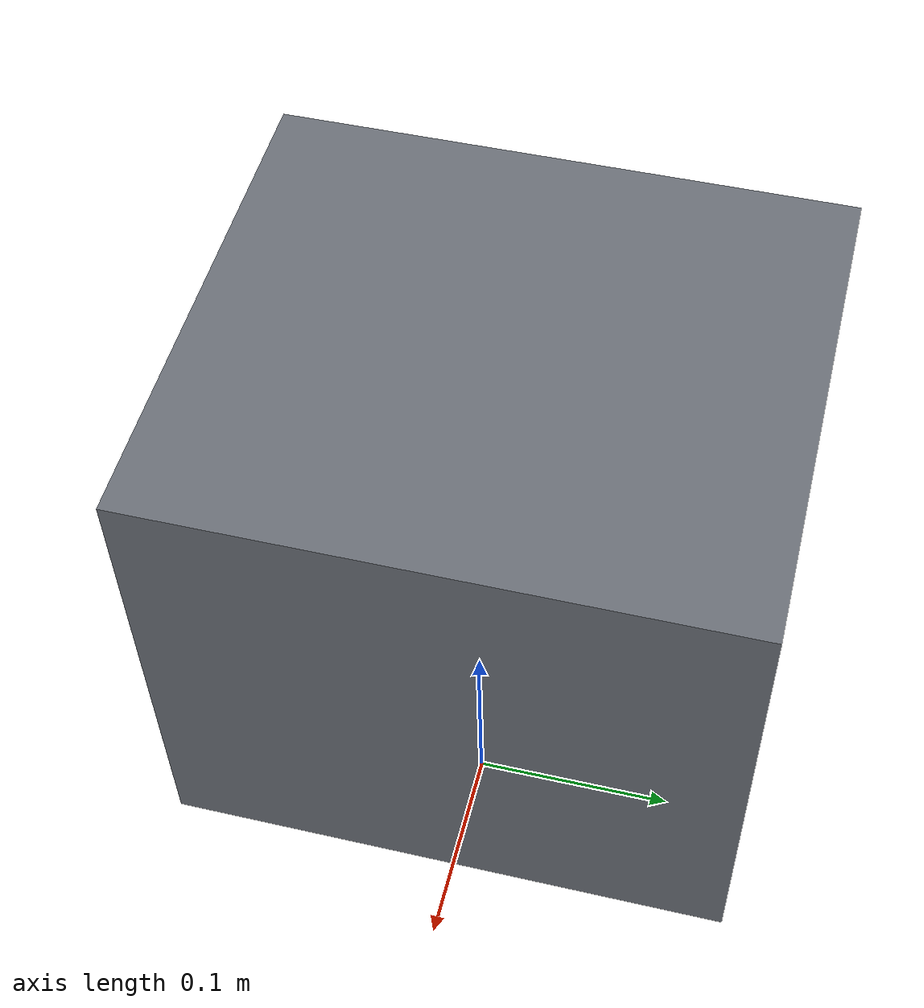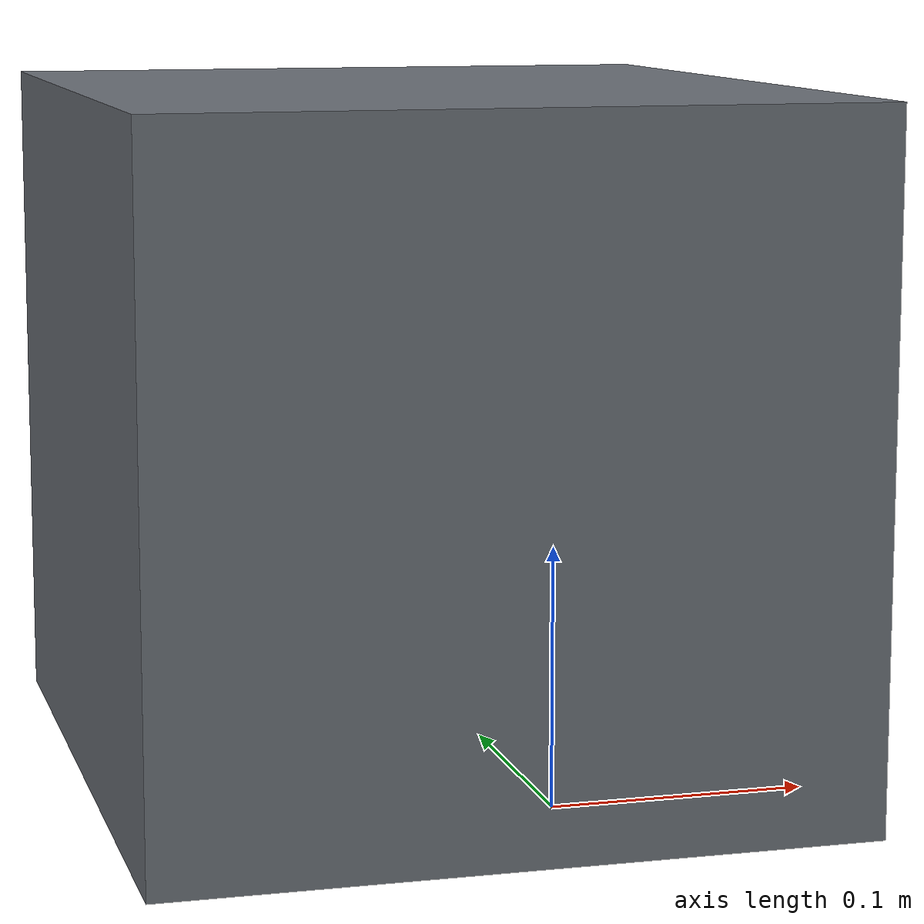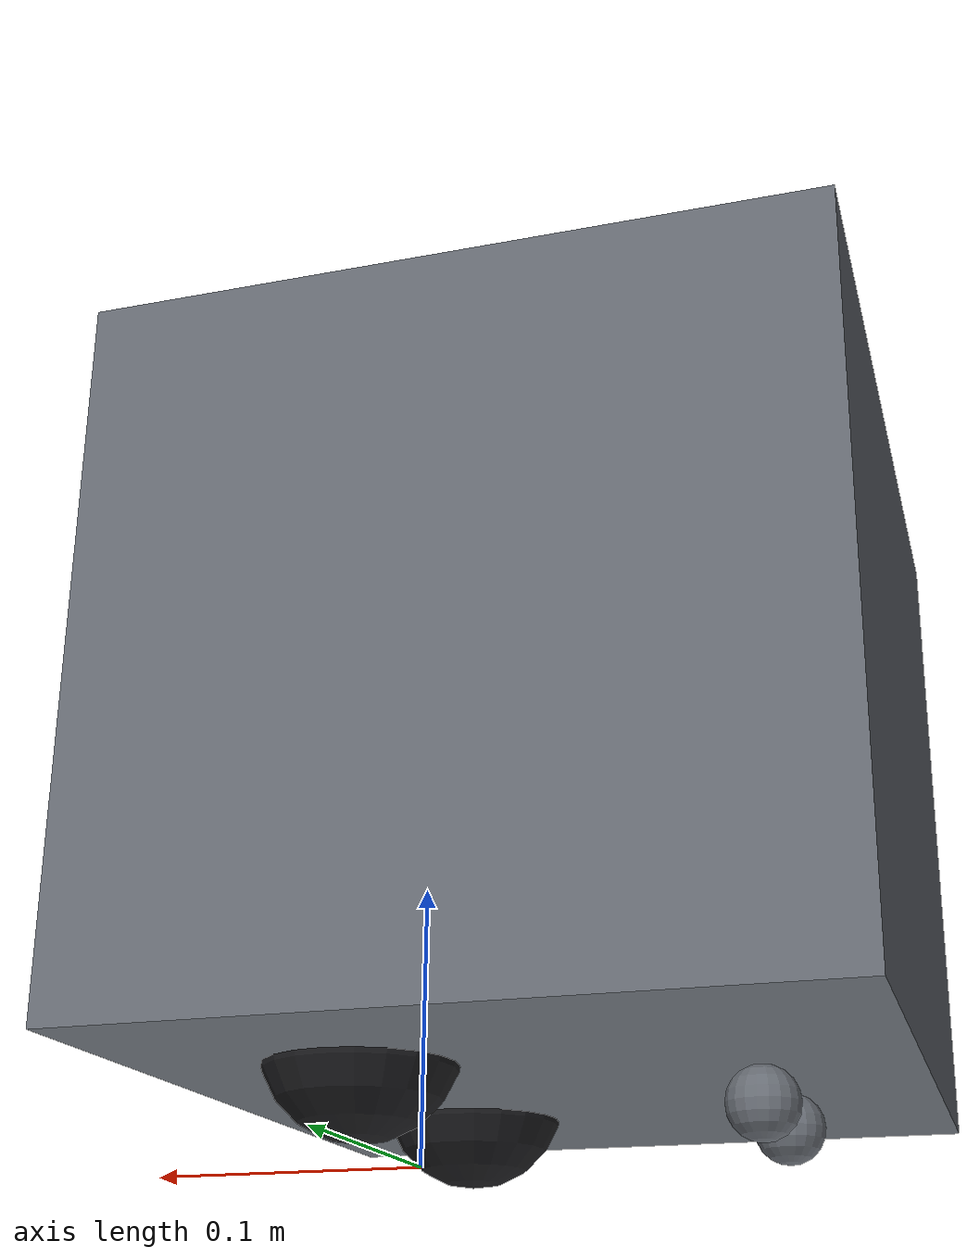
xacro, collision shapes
<?xml version="1.0"?>
<robot xmlns:xacro="http://ros.org/wiki/xacro" name="jongky">

  <!-- 이 파일이 launch에서 호출되는 입구.
       실제 로봇 정의는 jongky.urdf.xacro 안에 있고,
       여기서는 실행 시 바꿀 수 있는 인자의 기본값만 정한다.

       예: ros2 launch ... cam_tilt_deg:=12
       하면 파일을 안 고치고도 카메라 각도가 바뀐다. -->

  <xacro:include filename="$(find jongky_description)/urdf/jongky.urdf.xacro"/>

  <xacro:arg name="namespace"     default=""/>
  <xacro:arg name="is_sim"        default="false"/>
  <!-- 목업 하드웨어. 실물 없이 /cmd_vel -> /odom -> TF 를 돌려볼 때 true -->
  <xacro:arg name="use_mock"      default="false"/>
  <!-- 실물 모드에서 쓸 시리얼 포트. 가상 포트로 시험할 때 바꿔 넣는다 -->
  <xacro:arg name="serial_port"   default="/dev/yahboom"/>
  <xacro:arg name="cam_tilt_deg"  default="0"/>

  <xacro:arg name="laser_yaw_deg" default="0"/>

  <xacro:arg name="tof_pitch_deg" default="25"/>
  <xacro:arg name="tof_yaw_deg"   default="5"/>

  <xacro:insert_robot namespace="$(arg namespace)"
                      is_sim="$(arg is_sim)"
                      use_mock="$(arg use_mock)"
                      serial_port="$(arg serial_port)"
                      cam_tilt_deg="$(arg cam_tilt_deg)"
                      laser_yaw_deg="$(arg laser_yaw_deg)"
                      tof_pitch_deg="$(arg tof_pitch_deg)"
                      tof_yaw_deg="$(arg tof_yaw_deg)"/>
</robot>

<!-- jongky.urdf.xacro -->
<robot xmlns:xacro="http://www.ros.org/wiki/xacro">

  <xacro:macro name="insert_robot" params="namespace is_sim:=false use_mock:=false serial_port cam_tilt_deg laser_yaw_deg tof_pitch_deg tof_yaw_deg">

    <xacro:include filename="$(find jongky_description)/urdf/common/insert_inertia.urdf.xacro"/>

    <!-- ============================================================
         치수 상수 — 값을 바꿀 일이 있으면 여기만 고치면 된다
         ============================================================ -->

    <!-- 구동 바퀴 (실측 확정) -->
    <xacro:property name="wheel_radius"  value="0.0335"/>
    <!-- 실측 24~25. wheel.stl은 접지면까지 26.97이라 실물과 다르다.
         비주얼만 2.5mm 두껍게 보이고 물리·좌표에는 영향 없다. -->
    <xacro:property name="wheel_width"   value="0.0245"/>

    <xacro:property name="wheel_y"       value="0.059545"/>
    <!-- 메시 두께 중심이 0.6mm 치우쳐 있어 보정 -->
    <xacro:property name="wheel_mesh_dy" value="0.0006"/>

    <!-- 캐스터 (실측 확정, 뒤쪽 2개) -->
    <xacro:property name="caster_radius" value="0.0125"/>
    <xacro:property name="caster_x"      value="-0.12523"/>
    <xacro:property name="caster_y"      value="0.028"/>
    <xacro:property name="caster_z"      value="${caster_radius - wheel_radius}"/>

    <xacro:property name="caster_trail"     value="${caster_radius}"/>

    <xacro:property name="caster_ball_mass" value="0.010"/>
    <xacro:property name="caster_yoke_mass" value="0.010"/>

    <!-- 메시 실측 bbox (base_link.stl, mm→m 환산)
         관성 계산은 이 실제 치수로 한다. -->
    <xacro:property name="body_len"      value="0.24952"/>
    <!-- 판 폭 148 = 공식 도면값. 메시도 148.0~148.3으로 일치한다.
         판은 네 모서리가 모따기되어 앞뒤 끝에서 139.7까지 좁아지므로,
         모서리 근처에서 재면 135쯤 나온다. 가운데를 재야 한다. -->
    <xacro:property name="body_wid_real" value="0.148"/>
    <xacro:property name="body_hgt_real" value="0.27180"/>
    <xacro:property name="body_cx"       value="-0.05139"/>
    <xacro:property name="body_com_z"    value="0.10155"/>
    <xacro:property name="body_top_z"    value="0.23745"/>

    <xacro:property name="body_wid"      value="0.28011"/>
    <xacro:property name="body_bot_z"    value="${caster_z + caster_radius}"/>
    <xacro:property name="body_hgt"      value="${body_top_z - body_bot_z}"/>
    <xacro:property name="body_cz"       value="${(body_top_z + body_bot_z)/2}"/>

    <!-- 센서 위치 (TBD — 전부 추정값, 실측 후 교체할 것) -->
    <xacro:property name="laser_x"       value="0.01174"/>
    <xacro:property name="laser_z"       value="0.21925"/>
    <xacro:property name="cam_x"         value="0.070"/>
    <xacro:property name="cam_z"         value="0.1656"/>
    <xacro:property name="rear_cam_x"    value="-0.174"/>
    <xacro:property name="rear_cam_z"    value="0.1054"/>
    <!-- TOF (실측 반영 — 줄자 눈대중이라 ±5mm.
         TOF는 단일점 거리센서라 빔 원뿔에 비하면 이 정도 오차는 무시된다.
         바닥에서 115 → base_link 기준 115 − 33.5 = 81.5 -->
    <xacro:property name="tof_x"         value="0.050"/>
    <xacro:property name="tof_y"         value="0.075"/>
    <xacro:property name="tof_z"         value="0.0815"/>
    <xacro:property name="imu_x"         value="-0.050"/>
    <xacro:property name="imu_z"         value="0.080"/>

    <!-- 질량 — 로봇 전체 실측 2.603 kg (저울)
         바퀴는 따로 안 쟀다. 지름 67 × 폭 24.5 고무/플라스틱 바퀴로
         50g 추정하고, 나머지를 몸통에 몰아준다.
            2.603 − 0.05×2 = 2.503
         바퀴 질량은 몸통의 2%라 추정 오차가 결과에 거의 영향 없다. -->
    <!-- is_sim 이면 캐스터를 별도 링크로 떼어내므로 그만큼 몸통에서 뺀다.
         두 경우 모두 합계는 실측 2.603 kg 으로 같다
         (tools/check_merged.py 가 이 합을 본다). -->
    <xacro:property name="caster_split_mass" value="0.0"/>
    <xacro:if value="${is_sim}">
      <xacro:property name="caster_split_mass" value="${2*(caster_ball_mass + caster_yoke_mass)}"/>
    </xacro:if>
    <xacro:property name="body_mass"     value="${2.503 - caster_split_mass}"/>
    <xacro:property name="wheel_mass"    value="0.05"/>

    <xacro:property name="mesh_scale"    value="0.001 0.001 0.001"/>

    <link name="base_footprint"/>

    <joint name="base_footprint_joint" type="fixed">
      <parent link="base_footprint"/>
      <child  link="base_link"/>
      <origin xyz="0 0 ${wheel_radius}" rpy="0 0 0"/>
    </joint>

    <link name="base_link">

      <visual>
        <origin xyz="0 0 0" rpy="0 0 0"/>
        <geometry>
          <mesh filename="package://jongky_description/meshes/visual/base_link.stl"
                scale="${mesh_scale}"/>
        </geometry>
        <material name="body_gray">
          <color rgba="0.42 0.44 0.47 1.0"/>
        </material>
      </visual>

      <!-- 차체 충돌 박스 -->
      <collision>
        <origin xyz="${body_cx} 0 ${body_cz}" rpy="0 0 0"/>
        <geometry>
          <box size="${body_len} ${body_wid} ${body_hgt}"/>
        </geometry>
      </collision>

      <xacro:unless value="${is_sim}">
        <!-- 왼쪽 캐스터 -->
        <collision>
          <origin xyz="${caster_x} ${caster_y} ${caster_z}" rpy="0 0 0"/>
          <geometry>
            <sphere radius="${caster_radius}"/>
          </geometry>
        </collision>

        <!-- 오른쪽 캐스터 -->
        <collision>
          <origin xyz="${caster_x} ${-caster_y} ${caster_z}" rpy="0 0 0"/>
          <geometry>
            <sphere radius="${caster_radius}"/>
          </geometry>
        </collision>
      </xacro:unless>

      <!-- 관성은 콜리전 박스가 아니라 실제 차체 치수로 계산한다.
           마진 포함된 body_wid(280)를 넣으면 izz가 1.6배로 부풀어
           제자리 회전이 실제보다 둔해진다. -->
      <inertial>
        <origin xyz="${body_cx} 0 ${body_com_z}" rpy="0 0 0"/>
        <mass value="${body_mass}"/>
        <xacro:box_inertia m="${body_mass}" x="${body_len}" y="${body_wid_real}" z="${body_hgt_real}"/>
      </inertial>
    </link>

    <xacro:macro name="insert_wheel" params="side dir">

      <link name="${side}_wheel">
        <visual>
          <origin xyz="0 ${dir*wheel_mesh_dy} 0" rpy="0 0 ${(1-dir)*pi/2}"/>
          <geometry>
            <mesh filename="package://jongky_description/meshes/visual/wheel.stl"
                  scale="${mesh_scale}"/>
          </geometry>
          <material name="wheel_black">
            <color rgba="0.11 0.11 0.12 1.0"/>
          </material>
        </visual>

        <collision>
          <origin xyz="0 0 0" rpy="0 0 0"/>
          <geometry>
            <sphere radius="${wheel_radius}"/>
          </geometry>
        </collision>

        <!-- cylinder_inertia는 회전축이 z인 공식이다. 이 바퀴의 joint
             axis는 y이므로 origin에서 x축으로 90도 돌려 실린더 z축을
             y축에 맞춘다. 안 돌리면 스핀축 관성이 1.64배 어긋난다. -->
        <inertial>
          <origin xyz="0 0 0" rpy="${pi/2} 0 0"/>
          <mass value="${wheel_mass}"/>
          <xacro:cylinder_inertia m="${wheel_mass}" r="${wheel_radius}" h="${wheel_width}"/>
        </inertial>
      </link>

      <joint name="${side}_wheel_joint" type="continuous">
        <parent link="base_link"/>
        <child  link="${side}_wheel"/>
        <axis   xyz="0 1 0"/>
        <origin xyz="0 ${dir*wheel_y} 0" rpy="0 0 0"/>
      </joint>

    </xacro:macro>

    <xacro:insert_wheel side="l" dir="1"/>
    <xacro:insert_wheel side="r" dir="-1"/>

    <xacro:macro name="insert_caster" params="side dir">

      <!-- 요크 : 수직축으로 도는 부분. 비주얼은 base_link.stl 이 이미
           그리고 있으므로 넣지 않는다 (겹쳐 그리면 z-fighting 만 난다). -->
      <link name="${side}_caster_yoke">
        <inertial>
          <origin xyz="${-caster_trail/2} 0 0" rpy="0 0 0"/>
          <mass value="${caster_yoke_mass}"/>
          <xacro:sphere_inertia m="${caster_yoke_mass}" r="${caster_radius}"/>
        </inertial>
      </link>

      <!-- damping·friction 0 : 수동 관절이라 저항이 있으면 안 된다.
           Isaac 변환기가 URDF 값을 읽는 경로로 들어올 때를 위한 명시이고,
           CLI 인자가 이기는 경로에서는 위 [USD 변환 주의] 를 따라야 한다. -->
      <joint name="${side}_caster_swivel_joint" type="continuous">
        <parent link="base_link"/>
        <child  link="${side}_caster_yoke"/>
        <axis   xyz="0 0 1"/>
        <origin xyz="${caster_x + caster_trail} ${dir*caster_y} ${caster_z}" rpy="0 0 0"/>
        <dynamics damping="0.0" friction="0.0"/>
      </joint>

      <!-- 볼 : 접지하는 유일한 부분. 반지름은 실측 그대로 12.5mm.
           스위블 각 0 에서 중심이 (caster_x, ±caster_y, caster_z) 에 온다 —
           고정 구슬 시절 위치와 정확히 같다. -->
      <link name="${side}_caster_ball">
        <collision>
          <origin xyz="0 0 0" rpy="0 0 0"/>
          <geometry>
            <sphere radius="${caster_radius}"/>
          </geometry>
        </collision>

        <inertial>
          <origin xyz="0 0 0" rpy="0 0 0"/>
          <mass value="${caster_ball_mass}"/>
          <xacro:sphere_inertia m="${caster_ball_mass}" r="${caster_radius}"/>
        </inertial>
      </link>

      <joint name="${side}_caster_roll_joint" type="continuous">
        <parent link="${side}_caster_yoke"/>
        <child  link="${side}_caster_ball"/>
        <axis   xyz="0 1 0"/>
        <origin xyz="${-caster_trail} 0 0" rpy="0 0 0"/>
        <dynamics damping="0.0" friction="0.0"/>
      </joint>

    </xacro:macro>

    <xacro:if value="${is_sim}">
      <xacro:insert_caster side="l" dir="1"/>
      <xacro:insert_caster side="r" dir="-1"/>
    </xacro:if>

    <link name="laser"/>
    <joint name="laser_joint" type="fixed">
      <parent link="base_link"/>
      <child  link="laser"/>
      <origin xyz="${laser_x} 0 ${laser_z}" rpy="0 0 ${laser_yaw_deg*pi/180}"/>
    </joint>

    <!-- 아스트라 뎁스 카메라. 광학 프레임은 드라이버가 붙인다. -->
    <link name="camera_link"/>
    <joint name="camera_joint" type="fixed">
      <parent link="base_link"/>
      <child  link="camera_link"/>
      <origin xyz="${cam_x} 0 ${cam_z}" rpy="0 ${cam_tilt_deg*pi/180} 0"/>
    </joint>

    <!-- 후방 카메라 (IMX219) -->
    <link name="rear_camera_link"/>
    <joint name="rear_camera_joint" type="fixed">
      <parent link="base_link"/>
      <child  link="rear_camera_link"/>
      <origin xyz="${rear_cam_x} 0 ${rear_cam_z}" rpy="0 0 ${pi}"/>
    </joint>

    <!-- TOF400F 2개. pitch로 숙이고 yaw로 좌우로 벌린다.
         실행 인자로 각도를 바꿀 수 있어 브래킷을 바꿔도 파일 수정 불필요. -->
    <link name="tof_l_link"/>
    <joint name="tof_l_joint" type="fixed">
      <parent link="base_link"/>
      <child  link="tof_l_link"/>
      <origin xyz="${tof_x} ${tof_y} ${tof_z}"
              rpy="0 ${tof_pitch_deg*pi/180} ${tof_yaw_deg*pi/180}"/>
    </joint>

    <link name="tof_r_link"/>
    <joint name="tof_r_joint" type="fixed">
      <parent link="base_link"/>
      <child  link="tof_r_link"/>
      <origin xyz="${tof_x} ${-tof_y} ${tof_z}"
              rpy="0 ${tof_pitch_deg*pi/180} ${-tof_yaw_deg*pi/180}"/>
    </joint>

    <!-- 야붐 제어보드 내장 IMU -->
    <link name="imu_link"/>
    <joint name="imu_joint" type="fixed">
      <parent link="base_link"/>
      <child  link="imu_link"/>
      <origin xyz="${imu_x} 0 ${imu_z}" rpy="0 0 0"/>
    </joint>

    <ros2_control name="jongky" type="system">
      <hardware>
        <xacro:if value="${use_mock}">
          <plugin>mock_components/GenericSystem</plugin>
          <!-- 속도 명령을 적분해 위치 상태를 만들어 준다.
               diff_drive_controller 가 position_feedback:=true 라 필요하다 -->
          <param name="calculate_dynamics">true</param>
        </xacro:if>
        <xacro:unless value="${use_mock}">
          <plugin>jongky_hardware/JongkySystemHardware</plugin>
          <param name="serial_port">${serial_port}</param>
          <param name="baud_rate">115200</param>
          <param name="car_type">1</param>
          <param name="counts_per_rev">1960</param>
          <!-- 위 치수 상수를 그대로 넘긴다. 하드웨어 인터페이스가
               바퀴속도 -> 차체속도 역산에 쓰므로 URDF 와 어긋나면 안 된다 -->
          <!-- 보드가 vx·vz 를 각속도로 바꿀 때 쓰는 바퀴 크기가 우리와
               다르다. 실측 cmd 0.2 m/s -> 실제 0.144 m/s (0.719배) 이므로
               그 역수를 곱해 보낸다. 보드 가정 반지름 약 46.6mm. -->
          <param name="motor_pid_kp">0.8</param>
          <param name="motor_pid_ki">0.1</param>
          <param name="motor_pid_kd">0.5</param>
          <param name="board_vel_scale">1.391</param>
          <param name="wheel_radius">${wheel_radius}</param>
          <param name="wheel_separation">${wheel_y*2}</param>
        </xacro:unless>
      </hardware>

      <joint name="l_wheel_joint">
        <command_interface name="velocity">
          <param name="min">-20.0</param>
          <param name="max">20.0</param>
        </command_interface>
        <state_interface name="position"/>
        <state_interface name="velocity"/>
      </joint>

      <joint name="r_wheel_joint">
        <command_interface name="velocity">
          <param name="min">-20.0</param>
          <param name="max">20.0</param>
        </command_interface>
        <state_interface name="position"/>
        <state_interface name="velocity"/>
      </joint>

      <sensor name="imu_sensor">
        <state_interface name="orientation.x"/>
        <state_interface name="orientation.y"/>
        <state_interface name="orientation.z"/>
        <state_interface name="orientation.w"/>
        <state_interface name="angular_velocity.x"/>
        <state_interface name="angular_velocity.y"/>
        <state_interface name="angular_velocity.z"/>
        <state_interface name="linear_acceleration.x"/>
        <state_interface name="linear_acceleration.y"/>
        <state_interface name="linear_acceleration.z"/>
      </sensor>
    </ros2_control>

  </xacro:macro>
</robot>

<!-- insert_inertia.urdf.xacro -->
<robot xmlns:xacro="http://wiki.ros.org/xacro">

  <!-- 원통: r=반지름, h=높이. 회전축은 z -->
  <xacro:macro name="cylinder_inertia" params="m r h">
    <inertia ixx="${m*(3*r*r+h*h)/12}" ixy="0" ixz="0"
             iyy="${m*(3*r*r+h*h)/12}" iyz="0"
             izz="${m*r*r/2}"/>
  </xacro:macro>

  <!-- 직육면체: x, y, z = 각 변의 길이 -->
  <xacro:macro name="box_inertia" params="m x y z">
    <inertia ixx="${m*(y*y+z*z)/12}" ixy="0" ixz="0"
             iyy="${m*(x*x+z*z)/12}" iyz="0"
             izz="${m*(x*x+y*y)/12}"/>
  </xacro:macro>

  <!-- 구: r=반지름 -->
  <xacro:macro name="sphere_inertia" params="m r">
    <inertia ixx="${2*m*r*r/5}" ixy="0" ixz="0"
             iyy="${2*m*r*r/5}" iyz="0"
             izz="${2*m*r*r/5}"/>
  </xacro:macro>

</robot>
